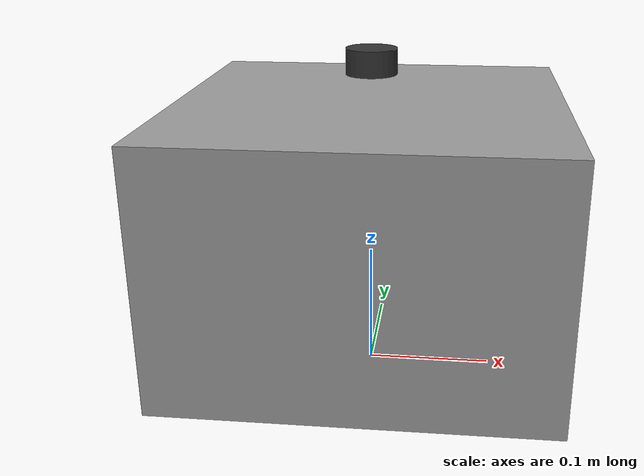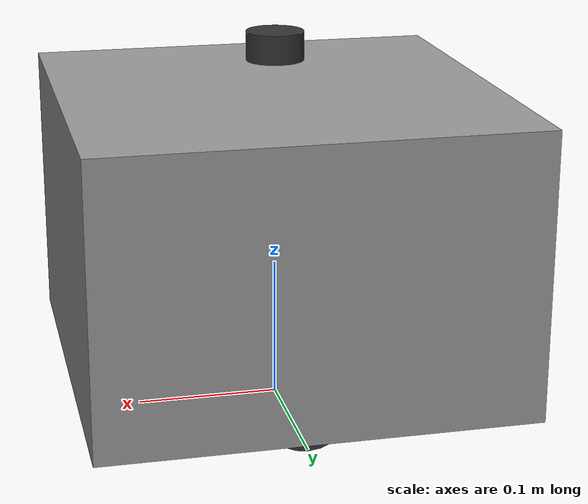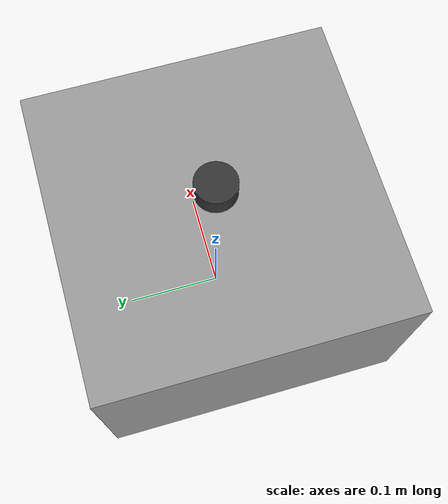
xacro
<?xml version="1.0"?>
<robot name="nvis_3302ard" xmlns:xacro="http://www.ros.org/wiki/xacro">

  <xacro:include filename="$(find buggy)/urdf/nvis_3302ard.ros2_control.urdf.xacro"/>

  <xacro:property name="chassis_length" value="0.30"/>
  <xacro:property name="chassis_width"  value="0.30"/>
  <xacro:property name="chassis_height" value="0.2"/>
  <xacro:property name="total_mass"     value="1.0"/>

  <xacro:property name="robot_collision_radius" value="0.14"/>

  <xacro:property name="wheel_radius"     value="0.0325"/>
  <xacro:property name="wheel_width"      value="0.026"/>
  <xacro:property name="wheel_separation" value="0.180"/>
  <xacro:property name="caster_offset_x"  value="-0.070"/>

  <xacro:property name="caster_radius" value="0.012"/>
  <xacro:property name="chassis_ground_clearance" value="0.005"/>

  <xacro:property name="wheel_mass"  value="0.05"/>
  <xacro:property name="caster_mass" value="0.15"/>
  <xacro:property name="chassis_mass" value="${total_mass - 2*wheel_mass - caster_mass}"/>

  <xacro:property name="axle_z" value="${wheel_radius}"/>
  <xacro:property name="chassis_z" value="${axle_z + chassis_height/2.0 - chassis_ground_clearance}"/>

  <xacro:property name="lidar_standoff" value="0.03"/>
  <xacro:property name="lidar_horizontal_fov" value="${pi}"/>
  <xacro:property name="lidar_samples" value="180"/>

  <material name="chassis_grey">
    <color rgba="0.6 0.6 0.6 1.0"/>
  </material>
  <material name="dark_grey">
    <color rgba="0.2 0.2 0.2 1.0"/>
  </material>

  <link name="base_footprint"/>

  <joint name="base_footprint_joint" type="fixed">
    <parent link="base_footprint"/>
    <child link="base_link"/>
    <origin xyz="0 0 ${axle_z}" rpy="0 0 0"/>
  </joint>

  <link name="base_link">
    <visual>
      <origin xyz="0 0 ${chassis_z - axle_z}" rpy="0 0 0"/>
      <geometry><box size="${chassis_length} ${chassis_width} ${chassis_height}"/></geometry>
      <material name="chassis_grey"/>
    </visual>
    <collision>
      <origin xyz="0 0 ${chassis_z - axle_z}" rpy="0 0 0"/>
      <geometry><box size="${chassis_length} ${chassis_width} ${chassis_height}"/></geometry>
    </collision>
    <inertial>
      <origin xyz="0 0 ${chassis_z - axle_z}" rpy="0 0 0"/>
      <mass value="${chassis_mass}"/>
      <inertia
        ixx="${chassis_mass/12.0*(chassis_width*chassis_width + chassis_height*chassis_height)}" ixy="0" ixz="0"
        iyy="${chassis_mass/12.0*(chassis_length*chassis_length + chassis_height*chassis_height)}" iyz="0"
        izz="${chassis_mass/12.0*(chassis_length*chassis_length + chassis_width*chassis_width)}"/>
    </inertial>
  </link>

  <xacro:macro name="wheel" params="prefix reflect">
    <link name="${prefix}_wheel">
      <visual>
        <origin xyz="0 0 0" rpy="${pi/2.0} 0 0"/>
        <geometry><cylinder radius="${wheel_radius}" length="${wheel_width}"/></geometry>
        <material name="dark_grey"/>
      </visual>
      <collision>
        <origin xyz="0 0 0" rpy="${pi/2.0} 0 0"/>
        <geometry><cylinder radius="${wheel_radius}" length="${wheel_width}"/></geometry>
      </collision>
      <inertial>
        <mass value="${wheel_mass}"/>
        <inertia
          ixx="${wheel_mass/12.0*(3*wheel_radius*wheel_radius + wheel_width*wheel_width)}" ixy="0" ixz="0"
          iyy="${wheel_mass/2.0*wheel_radius*wheel_radius}" iyz="0"
          izz="${wheel_mass/12.0*(3*wheel_radius*wheel_radius + wheel_width*wheel_width)}"/>
      </inertial>
    </link>

    <joint name="${prefix}_wheel_joint" type="continuous">
      <parent link="base_link"/>
      <child link="${prefix}_wheel"/>
      <origin xyz="0 ${reflect * wheel_separation/2.0} 0" rpy="0 0 0"/>
      <axis xyz="0 1 0"/>
      <dynamics damping="0.05" friction="0.0"/>
    </joint>
  </xacro:macro>

  <xacro:wheel prefix="left" reflect="1"/>
  <xacro:wheel prefix="right" reflect="-1"/>

  <link name="caster_wheel">
    <visual>
      <geometry><sphere radius="${caster_radius}"/></geometry>
      <material name="dark_grey"/>
    </visual>
    <collision>
      <geometry><sphere radius="${caster_radius}"/></geometry>
    </collision>
    <inertial>
      <mass value="${caster_mass}"/>
      <inertia
        ixx="${2.0/5.0*caster_mass*caster_radius*caster_radius}" ixy="0" ixz="0"
        iyy="${2.0/5.0*caster_mass*caster_radius*caster_radius}" iyz="0"
        izz="${2.0/5.0*caster_mass*caster_radius*caster_radius}"/>
    </inertial>
  </link>

  <joint name="caster_wheel_joint" type="fixed">
    <parent link="base_link"/>
    <child link="caster_wheel"/>
    <origin xyz="${caster_offset_x} 0 ${caster_radius - axle_z}" rpy="0 0 0"/>
  </joint>

  <!-- ================= LiDAR ================= -->
  <xacro:macro name="crowd_nav_lidar"
               params="parent_link
                       xyz:='0 0 0' rpy:='0 0 0'
                       range_min:=0.12
                       range_max:=8.0
                       update_rate:=5.0
                       samples:=360
                       horizontal_fov:=6.28318530718
                       range_noise_stddev:=0.02
                       mount_radius:=0.02
                       mount_height:=0.02">

    <link name="lidar_link">
      <visual>
        <geometry><cylinder radius="${mount_radius}" length="${mount_height}"/></geometry>
        <material name="dark_grey"/>
      </visual>
      <collision>
        <geometry><cylinder radius="${mount_radius}" length="${mount_height}"/></geometry>
      </collision>
      <inertial>
        <mass value="0.02"/>
        <inertia
          ixx="${0.02/12.0*(3*mount_radius*mount_radius + mount_height*mount_height)}" ixy="0" ixz="0"
          iyy="${0.02/12.0*(3*mount_radius*mount_radius + mount_height*mount_height)}" iyz="0"
          izz="${0.02/2.0*mount_radius*mount_radius}"/>
      </inertial>
    </link>

    <joint name="lidar_joint" type="fixed">
      <parent link="${parent_link}"/>
      <child link="lidar_link"/>
      <origin xyz="${xyz}" rpy="${rpy}"/>
    </joint>

    <gazebo reference="lidar_link">
      <sensor name="lidar" type="gpu_lidar">
        <pose>0 0 0 0 0 0</pose>
        <update_rate>${update_rate}</update_rate>
        <topic>scan</topic>
        <gz_frame_id>lidar_link</gz_frame_id>
        <lidar>
          <scan>
            <horizontal>
              <samples>${samples}</samples>
              <resolution>1</resolution>
              <min_angle>${-horizontal_fov/2.0}</min_angle>
              <max_angle>${horizontal_fov/2.0}</max_angle>
            </horizontal>
            <vertical>
              <samples>1</samples>
              <resolution>1</resolution>
              <min_angle>0.0</min_angle>
              <max_angle>0.0</max_angle>
            </vertical>
          </scan>
          <range>
            <min>${range_min}</min>
            <max>${range_max}</max>
            <resolution>0.01</resolution>
          </range>
          <noise>
            <type>gaussian</type>
            <mean>0.0</mean>
            <stddev>${range_noise_stddev}</stddev>
          </noise>
        </lidar>
        <always_on>true</always_on>
        <visualize>false</visualize>
      </sensor>
    </gazebo>
  </xacro:macro>

  <xacro:crowd_nav_lidar
    parent_link="base_link"
    xyz="0 0 ${chassis_z - axle_z + chassis_height/2.0 + lidar_standoff}"
    rpy="0 0 0"
    horizontal_fov="${lidar_horizontal_fov}"
    samples="${lidar_samples}"/>

  <xacro:nvis_3302ard_ros2_control/>

  <gazebo>
    <plugin filename="gz_ros2_control-system" name="gz_ros2_control::GazeboSimROS2ControlPlugin">
      <parameters>$(find buggy)/config/diff_drive_controller.yaml</parameters>
    </plugin>
  </gazebo>

  <gazebo reference="base_link">
    <material>Gazebo/Grey</material>
  </gazebo>

  <gazebo reference="caster_wheel">
    <mu1>0.001</mu1>
    <mu2>0.001</mu2>
  </gazebo>

  <gazebo reference="left_wheel">
    <mu1>1.0</mu1>
    <mu2>1.0</mu2>
  </gazebo>
  <gazebo reference="right_wheel">
    <mu1>1.0</mu1>
    <mu2>1.0</mu2>
  </gazebo>

</robot>
